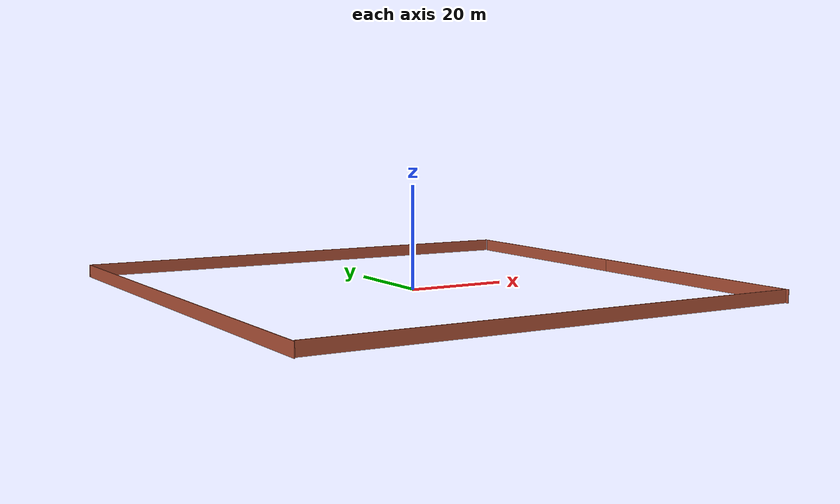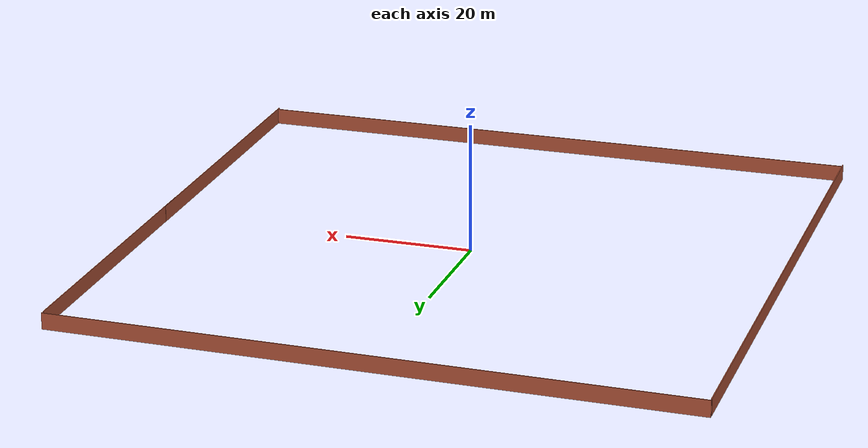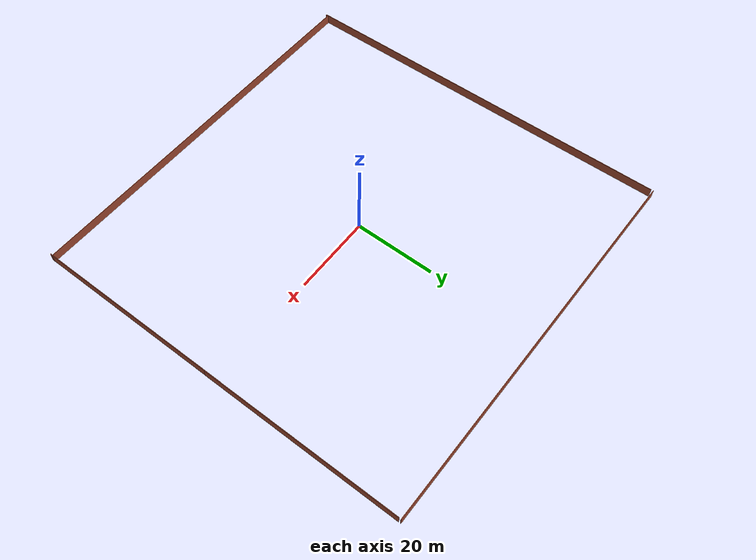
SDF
<?xml version='1.0'?>
<sdf version='1.7'>
  <model name='testing-ground'>
    <pose>0.456436 0.198067 0 0 -0 0</pose>
    <link name='Wall_0'>
      <collision name='Wall_0_Collision'>
        <geometry>
          <box>
            <size>49.4049 0.15 2.5</size>
          </box>
        </geometry>
        <pose>0 0 1.25 0 -0 0</pose>
      </collision>
      <visual name='Wall_0_Visual'>
        <pose>0 0 1.25 0 -0 0</pose>
        <geometry>
          <box>
            <size>49.4049 0.15 2.5</size>
          </box>
        </geometry>
        <material>
          <script>
            <uri>file://media/materials/scripts/gazebo.material</uri>
            <name>Gazebo/Bricks</name>
          </script>
          <ambient>1 1 1 1</ambient>
        </material>
        <meta>
          <layer>0</layer>
        </meta>
      </visual>
      <pose>48.3309 22.3219 0 0 -0 1.58249</pose>
    </link>
    <link name='Wall_1'>
      <collision name='Wall_1_Collision'>
        <geometry>
          <box>
            <size>97.3185 0.15 2.5</size>
          </box>
        </geometry>
        <pose>0 0 1.25 0 -0 0</pose>
      </collision>
      <visual name='Wall_1_Visual'>
        <pose>0 0 1.25 0 -0 0</pose>
        <geometry>
          <box>
            <size>97.3185 0.15 2.5</size>
          </box>
        </geometry>
        <material>
          <script>
            <uri>file://media/materials/scripts/gazebo.material</uri>
            <name>Gazebo/Bricks</name>
          </script>
          <ambient>1 1 1 1</ambient>
        </material>
        <meta>
          <layer>0</layer>
        </meta>
      </visual>
      <pose>-0.537852 48.0992 0 0 -0 3.12974</pose>
    </link>
    <link name='Wall_2'>
      <collision name='Wall_2_Collision'>
        <geometry>
          <box>
            <size>96.931 0.15 2.5</size>
          </box>
        </geometry>
        <pose>0 0 1.25 0 -0 0</pose>
      </collision>
      <visual name='Wall_2_Visual'>
        <pose>0 0 1.25 0 -0 0</pose>
        <geometry>
          <box>
            <size>96.931 0.15 2.5</size>
          </box>
        </geometry>
        <material>
          <script>
            <uri>file://media/materials/scripts/gazebo.material</uri>
            <name>Gazebo/Bricks</name>
          </script>
          <ambient>1 1 1 1</ambient>
        </material>
        <meta>
          <layer>0</layer>
        </meta>
      </visual>
      <pose>-48.5429 -0.287876 0 0 -0 -1.5589</pose>
    </link>
    <link name='Wall_3'>
      <collision name='Wall_3_Collision'>
        <geometry>
          <box>
            <size>97.2359 0.15 2.5</size>
          </box>
        </geometry>
        <pose>0 0 1.25 0 -0 0</pose>
      </collision>
      <visual name='Wall_3_Visual'>
        <pose>0 0 1.25 0 -0 0</pose>
        <geometry>
          <box>
            <size>97.2359 0.15 2.5</size>
          </box>
        </geometry>
        <material>
          <script>
            <uri>file://media/materials/scripts/gazebo.material</uri>
            <name>Gazebo/Bricks</name>
          </script>
          <ambient>1 1 1 1</ambient>
        </material>
        <meta>
          <layer>0</layer>
        </meta>
      </visual>
      <pose>0.57578 -48.0992 0 0 -0 0</pose>
    </link>
    <link name='Wall_4'>
      <collision name='Wall_4_Collision'>
        <geometry>
          <box>
            <size>50.7759 0.15 2.5</size>
          </box>
        </geometry>
        <pose>0 0 1.25 0 -0 0</pose>
      </collision>
      <visual name='Wall_4_Visual'>
        <pose>0 0 1.25 0 -0 0</pose>
        <geometry>
          <box>
            <size>50.7759 0.15 2.5</size>
          </box>
        </geometry>
        <material>
          <script>
            <uri>file://media/materials/scripts/gazebo.material</uri>
            <name>Gazebo/Bricks</name>
          </script>
          <ambient>1 1 1 1</ambient>
        </material>
        <meta>
          <layer>0</layer>
        </meta>
      </visual>
      <pose>48.8309 -23.3636 0 0 -0 1.58217</pose>
    </link>
    <static>1</static>
  </model>
</sdf>
